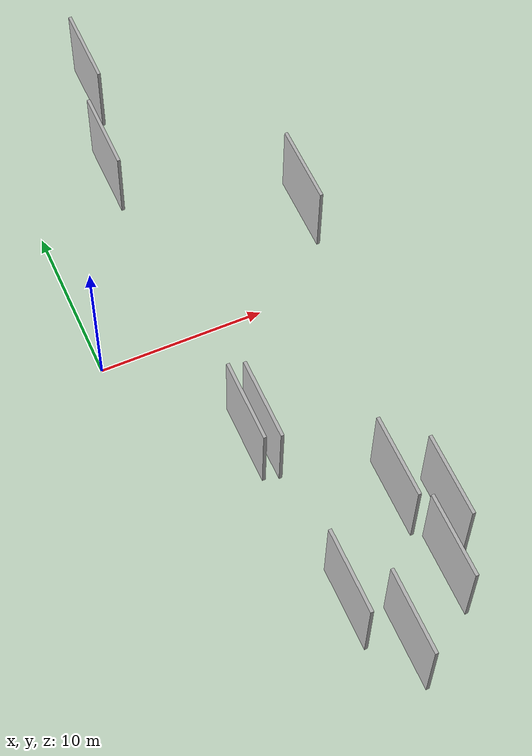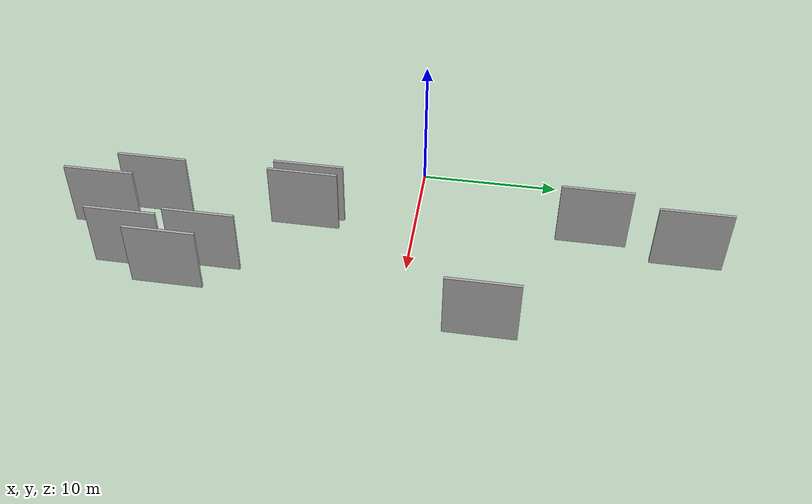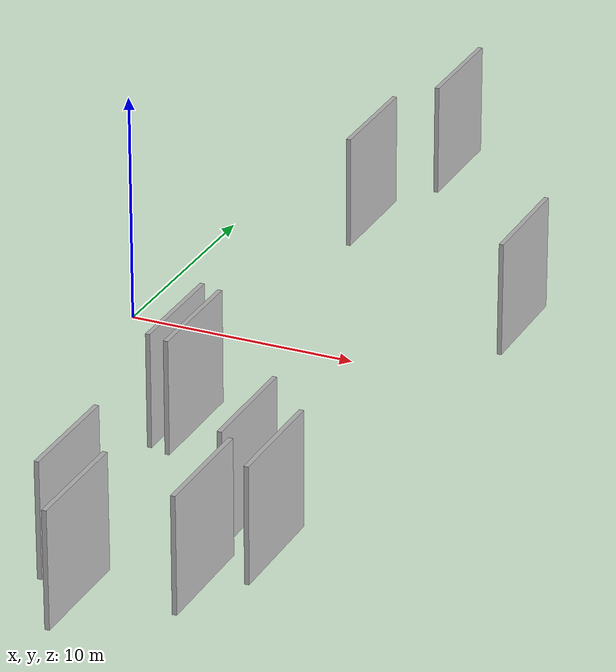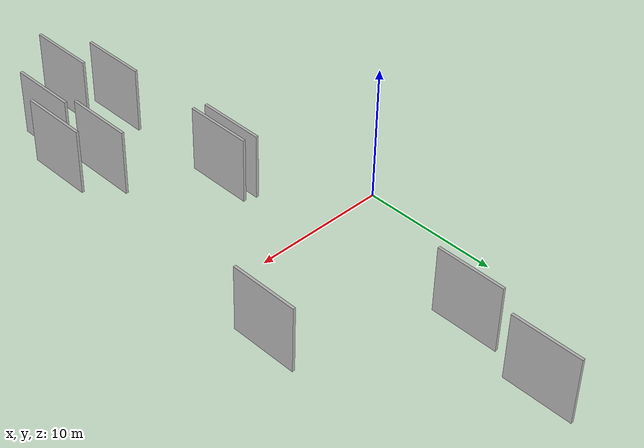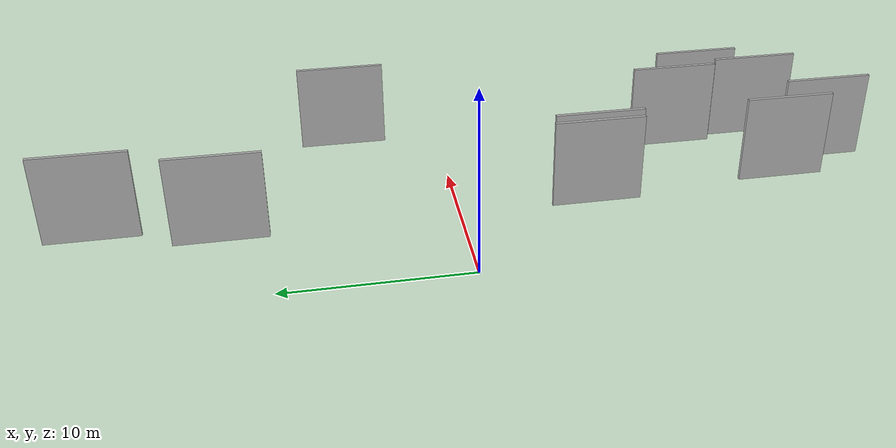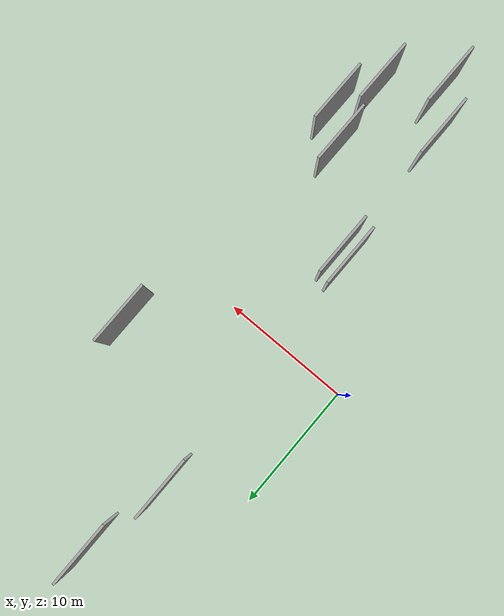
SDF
<sdf version="1.6">
 <world name="default">
  <scene>
   <sky><clouds><speed>12</speed></clouds></sky>
   <ambient>0.4 0.4 0.4 1</ambient>
   <background>0.7 0.7 0.7 1</background>
   <shadows>1</shadows>
  </scene>
  <gravity>0 0 -9.8066</gravity>
  <magnetic_field>6e-06 2.3e-05 -4.2e-05</magnetic_field>
  <physics default="0" name="default_physics" type="ode">
   <ode>
    <solver>
     <type>quick</type>
     <iters>10</iters>
     <sor>1.0</sor>
     <use_dynamic_moi_rescaling>0</use_dynamic_moi_rescaling>
    </solver>
    <constraints>
     <cfm>0</cfm>
     <erp>0.2</erp>
     <contact_max_correcting_vel>100</contact_max_correcting_vel>
     <contact_surface_layer>0.001</contact_surface_layer>
    </constraints>
   </ode>
   <max_step_size>0.004</max_step_size>
   <real_time_factor>1</real_time_factor>
   <real_time_update_rate>250</real_time_update_rate>
  </physics>
  <light name="sun" type="directional">
   <pose>0 0 10 0 0 0</pose>
   <diffuse>0.8 0.8 0.8 1</diffuse>
   <specular>0.2 0.2 0.2 1</specular>
   <attenuation>
    <range>1000</range>
    <constant>0.9</constant>
    <linear>0.01</linear>
    <quadratic>0.001</quadratic>
   </attenuation>
   <direction>-0.5 0.1 -0.9</direction>
  </light>
  <model name="grey_wall_1">
   <static>1</static>
   <pose>12.3581 -19.2331 0.0 0.000000 0.000000 1.570796</pose>
   <link name="link">
    <pose>0 0 2.50 0 0 0</pose>
    <collision name="collision"><geometry><box><size>5.00 0.2 5.00</size></box></geometry></collision>
    <visual name="visual">
     <cast_shadows>0</cast_shadows>
     <geometry><box><size>5.00 0.2 5.00</size></box></geometry>
     <material>
      <script>
       <uri>model://HANNAS_wall/materials/scripts</uri>
       <uri>model://HANNAS_wall/materials/textures</uri>
       <name>vrc/HANNAS_wall</name>
      </script>
     </material>
    </visual>
   </link>
  </model>
  <model name="grey_wall_2">
   <static>1</static>
   <pose>13.8395 -16.0690 0.0 0.000000 0.000000 1.570796</pose>
   <link name="link">
    <pose>0 0 2.50 0 0 0</pose>
    <collision name="collision"><geometry><box><size>5.00 0.2 5.00</size></box></geometry></collision>
    <visual name="visual">
     <cast_shadows>0</cast_shadows>
     <geometry><box><size>5.00 0.2 5.00</size></box></geometry>
     <material>
      <script>
       <uri>model://HANNAS_wall/materials/scripts</uri>
       <uri>model://HANNAS_wall/materials/textures</uri>
       <name>vrc/HANNAS_wall</name>
      </script>
     </material>
    </visual>
   </link>
  </model>
  <model name="grey_wall_3">
   <static>1</static>
   <pose>5.3677 12.6422 0.0 0.000000 0.000000 1.570796</pose>
   <link name="link">
    <pose>0 0 2.50 0 0 0</pose>
    <collision name="collision"><geometry><box><size>5.00 0.2 5.00</size></box></geometry></collision>
    <visual name="visual">
     <cast_shadows>0</cast_shadows>
     <geometry><box><size>5.00 0.2 5.00</size></box></geometry>
     <material>
      <script>
       <uri>model://HANNAS_wall/materials/scripts</uri>
       <uri>model://HANNAS_wall/materials/textures</uri>
       <name>vrc/HANNAS_wall</name>
      </script>
     </material>
    </visual>
   </link>
  </model>
  <model name="grey_wall_4">
   <static>1</static>
   <pose>6.5866 -18.8851 0.0 0.000000 0.000000 1.570796</pose>
   <link name="link">
    <pose>0 0 2.50 0 0 0</pose>
    <collision name="collision"><geometry><box><size>5.00 0.2 5.00</size></box></geometry></collision>
    <visual name="visual">
     <cast_shadows>0</cast_shadows>
     <geometry><box><size>5.00 0.2 5.00</size></box></geometry>
     <material>
      <script>
       <uri>model://HANNAS_wall/materials/scripts</uri>
       <uri>model://HANNAS_wall/materials/textures</uri>
       <name>vrc/HANNAS_wall</name>
      </script>
     </material>
    </visual>
   </link>
  </model>
  <model name="grey_wall_5">
   <static>1</static>
   <pose>11.7609 -13.9581 0.0 0.000000 0.000000 1.570796</pose>
   <link name="link">
    <pose>0 0 2.50 0 0 0</pose>
    <collision name="collision"><geometry><box><size>5.00 0.2 5.00</size></box></geometry></collision>
    <visual name="visual">
     <cast_shadows>0</cast_shadows>
     <geometry><box><size>5.00 0.2 5.00</size></box></geometry>
     <material>
      <script>
       <uri>model://HANNAS_wall/materials/scripts</uri>
       <uri>model://HANNAS_wall/materials/textures</uri>
       <name>vrc/HANNAS_wall</name>
      </script>
     </material>
    </visual>
   </link>
  </model>
  <model name="grey_wall_6">
   <static>1</static>
   <pose>6.6817 19.2600 0.0 0.000000 0.000000 1.570796</pose>
   <link name="link">
    <pose>0 0 2.50 0 0 0</pose>
    <collision name="collision"><geometry><box><size>5.00 0.2 5.00</size></box></geometry></collision>
    <visual name="visual">
     <cast_shadows>0</cast_shadows>
     <geometry><box><size>5.00 0.2 5.00</size></box></geometry>
     <material>
      <script>
       <uri>model://HANNAS_wall/materials/scripts</uri>
       <uri>model://HANNAS_wall/materials/textures</uri>
       <name>vrc/HANNAS_wall</name>
      </script>
     </material>
    </visual>
   </link>
  </model>
  <model name="grey_wall_7">
   <static>1</static>
   <pose>8.5639 -22.1436 0.0 0.000000 0.000000 1.570796</pose>
   <link name="link">
    <pose>0 0 2.50 0 0 0</pose>
    <collision name="collision"><geometry><box><size>5.00 0.2 5.00</size></box></geometry></collision>
    <visual name="visual">
     <cast_shadows>0</cast_shadows>
     <geometry><box><size>5.00 0.2 5.00</size></box></geometry>
     <material>
      <script>
       <uri>model://HANNAS_wall/materials/scripts</uri>
       <uri>model://HANNAS_wall/materials/textures</uri>
       <name>vrc/HANNAS_wall</name>
      </script>
     </material>
    </visual>
   </link>
  </model>
  <model name="grey_wall_8">
   <static>1</static>
   <pose>5.7140 -7.6681 0.0 0.000000 0.000000 1.570796</pose>
   <link name="link">
    <pose>0 0 2.50 0 0 0</pose>
    <collision name="collision"><geometry><box><size>5.00 0.2 5.00</size></box></geometry></collision>
    <visual name="visual">
     <cast_shadows>0</cast_shadows>
     <geometry><box><size>5.00 0.2 5.00</size></box></geometry>
     <material>
      <script>
       <uri>model://HANNAS_wall/materials/scripts</uri>
       <uri>model://HANNAS_wall/materials/textures</uri>
       <name>vrc/HANNAS_wall</name>
      </script>
     </material>
    </visual>
   </link>
  </model>
  <model name="grey_wall_9">
   <static>1</static>
   <pose>15.2435 5.5871 0.0 0.000000 0.000000 1.570796</pose>
   <link name="link">
    <pose>0 0 2.50 0 0 0</pose>
    <collision name="collision"><geometry><box><size>5.00 0.2 5.00</size></box></geometry></collision>
    <visual name="visual">
     <cast_shadows>0</cast_shadows>
     <geometry><box><size>5.00 0.2 5.00</size></box></geometry>
     <material>
      <script>
       <uri>model://HANNAS_wall/materials/scripts</uri>
       <uri>model://HANNAS_wall/materials/textures</uri>
       <name>vrc/HANNAS_wall</name>
      </script>
     </material>
    </visual>
   </link>
  </model>
  <model name="grey_wall_10">
   <static>1</static>
   <pose>6.6136 -7.9281 0.0 0.000000 0.000000 1.570796</pose>
   <link name="link">
    <pose>0 0 2.50 0 0 0</pose>
    <collision name="collision"><geometry><box><size>5.00 0.2 5.00</size></box></geometry></collision>
    <visual name="visual">
     <cast_shadows>0</cast_shadows>
     <geometry><box><size>5.00 0.2 5.00</size></box></geometry>
     <material>
      <script>
       <uri>model://HANNAS_wall/materials/scripts</uri>
       <uri>model://HANNAS_wall/materials/textures</uri>
       <name>vrc/HANNAS_wall</name>
      </script>
     </material>
    </visual>
   </link>
  </model>
 </world>
</sdf>
